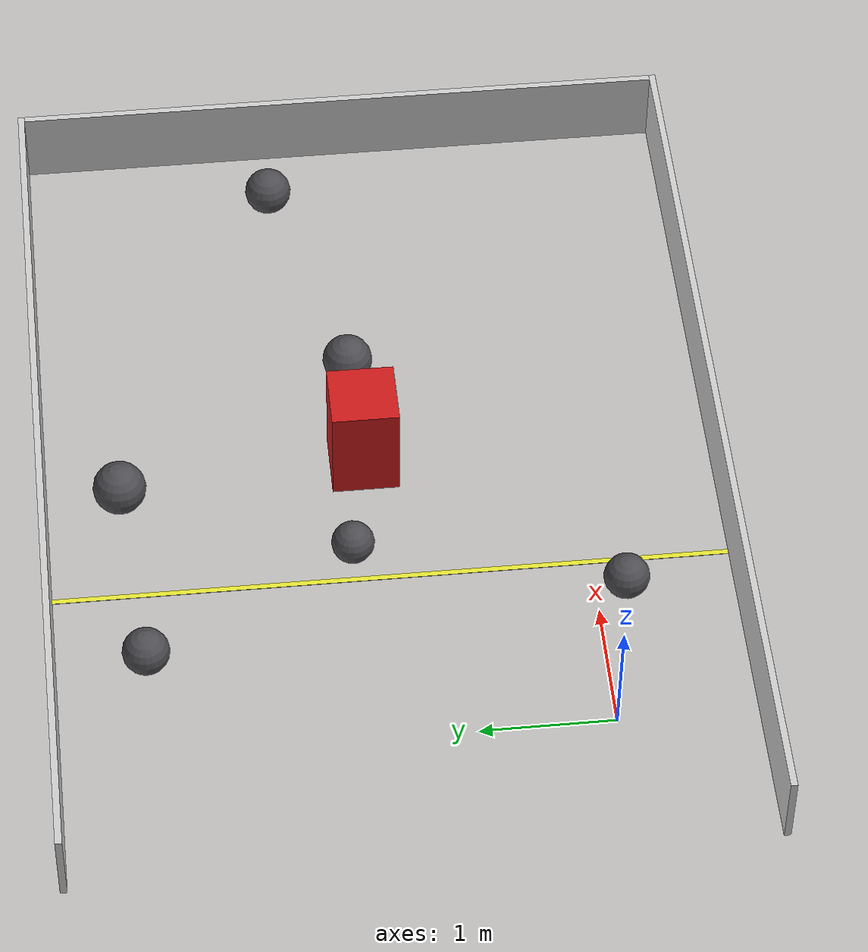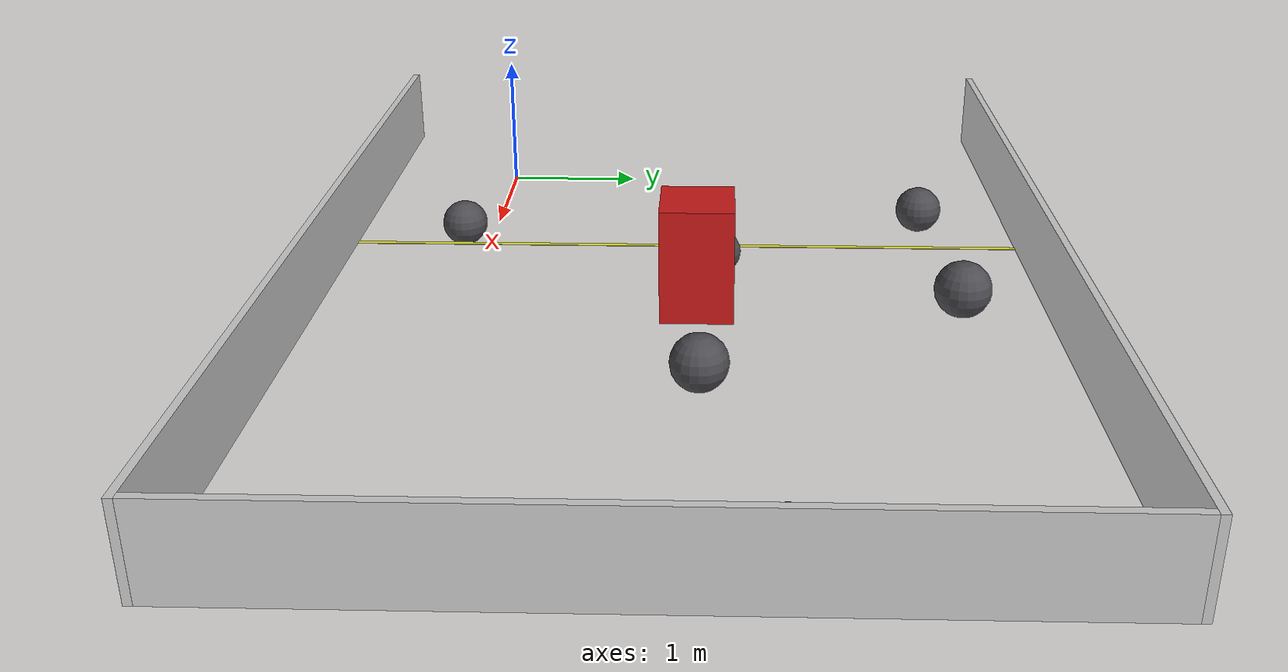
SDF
<sdf version="1.6">
 <world name="lunabotics_arena">
  <model name="wall_south">
   <static>true</static>
   <pose>2.4 -1.045 0.3 0 0 0</pose>
   <link name="link">
    <collision name="collision"><geometry><box><size>6.98 0.05 0.6</size></box></geometry></collision>
    <visual name="visual">
     <geometry><box><size>6.98 0.05 0.6</size></box></geometry>
     <material><ambient>0.8 0.8 0.8 1</ambient><diffuse>0.8 0.8 0.8 1</diffuse></material>
    </visual>
   </link>
  </model>
  <model name="wall_north">
   <static>true</static>
   <pose>2.4 4.005 0.3 0 0 0</pose>
   <link name="link">
    <collision name="collision"><geometry><box><size>6.98 0.05 0.6</size></box></geometry></collision>
    <visual name="visual">
     <geometry><box><size>6.98 0.05 0.6</size></box></geometry>
     <material><ambient>0.8 0.8 0.8 1</ambient><diffuse>0.8 0.8 0.8 1</diffuse></material>
    </visual>
   </link>
  </model>
  <model name="wall_east">
   <static>true</static>
   <pose>5.865 1.48 0.3 0 0 0</pose>
   <link name="link">
    <collision name="collision"><geometry><box><size>0.05 5.0 0.6</size></box></geometry></collision>
    <visual name="visual">
     <geometry><box><size>0.05 5.0 0.6</size></box></geometry>
     <material><ambient>0.8 0.8 0.8 1</ambient><diffuse>0.8 0.8 0.8 1</diffuse></material>
    </visual>
   </link>
  </model>
  <model name="zone_divider">
   <static>true</static>
   <pose>1.46 1.48 0.002 0 0 0</pose>
   <link name="link">
    <visual name="visual">
     <geometry><box><size>0.04 5.0 0.004</size></box></geometry>
     <material><ambient>0.9 0.9 0.2 1</ambient><diffuse>0.9 0.9 0.2 1</diffuse></material>
    </visual>
   </link>
  </model>
  <model name="column">
   <static>true</static>
   <pose>2.56 1.59 0.4 0 0 0</pose>
   <link name="link">
    <collision name="collision"><geometry><box><size>0.5 0.5 0.8</size></box></geometry></collision>
    <visual name="visual">
     <geometry><box><size>0.5 0.5 0.8</size></box></geometry>
     <material><ambient>0.8 0.1 0.1 1</ambient><diffuse>0.8 0.1 0.1 1</diffuse></material>
    </visual>
   </link>
  </model>
  <model name="rock_1">
   <static>true</static>
   <pose>0.88 3.32 0.0875 0 0 0</pose>
   <link name="link">
    <collision name="collision"><geometry><sphere><radius>0.175</radius></sphere></geometry></collision>
    <visual name="visual">
     <geometry><sphere><radius>0.175</radius></sphere></geometry>
     <material><ambient>0.3 0.3 0.32 1</ambient><diffuse>0.3 0.3 0.32 1</diffuse></material>
    </visual>
   </link>
  </model>
  <model name="rock_2">
   <static>true</static>
   <pose>2.42 3.43 0.10 0 0 0</pose>
   <link name="link">
    <collision name="collision"><geometry><sphere><radius>0.20</radius></sphere></geometry></collision>
    <visual name="visual">
     <geometry><sphere><radius>0.20</radius></sphere></geometry>
     <material><ambient>0.3 0.3 0.32 1</ambient><diffuse>0.3 0.3 0.32 1</diffuse></material>
    </visual>
   </link>
  </model>
  <model name="rock_4">
   <static>true</static>
   <pose>1.75 1.74 0.08 0 0 0</pose>
   <link name="link">
    <collision name="collision"><geometry><sphere><radius>0.16</radius></sphere></geometry></collision>
    <visual name="visual">
     <geometry><sphere><radius>0.16</radius></sphere></geometry>
     <material><ambient>0.3 0.3 0.32 1</ambient><diffuse>0.3 0.3 0.32 1</diffuse></material>
    </visual>
   </link>
  </model>
  <model name="rock_5">
   <static>true</static>
   <pose>3.54 1.62 0.095 0 0 0</pose>
   <link name="link">
    <collision name="collision"><geometry><sphere><radius>0.19</radius></sphere></geometry></collision>
    <visual name="visual">
     <geometry><sphere><radius>0.19</radius></sphere></geometry>
     <material><ambient>0.3 0.3 0.32 1</ambient><diffuse>0.3 0.3 0.32 1</diffuse></material>
    </visual>
   </link>
  </model>
  <model name="rock_6">
   <static>true</static>
   <pose>5.39 2.09 0.09 0 0 0</pose>
   <link name="link">
    <collision name="collision"><geometry><sphere><radius>0.18</radius></sphere></geometry></collision>
    <visual name="visual">
     <geometry><sphere><radius>0.18</radius></sphere></geometry>
     <material><ambient>0.3 0.3 0.32 1</ambient><diffuse>0.3 0.3 0.32 1</diffuse></material>
    </visual>
   </link>
  </model>
  <model name="rock_7">
   <static>true</static>
   <pose>1.24 -0.23 0.085 0 0 0</pose>
   <link name="link">
    <collision name="collision"><geometry><sphere><radius>0.17</radius></sphere></geometry></collision>
    <visual name="visual">
     <geometry><sphere><radius>0.17</radius></sphere></geometry>
     <material><ambient>0.3 0.3 0.32 1</ambient><diffuse>0.3 0.3 0.32 1</diffuse></material>
    </visual>
   </link>
  </model>
 </world>
</sdf>
